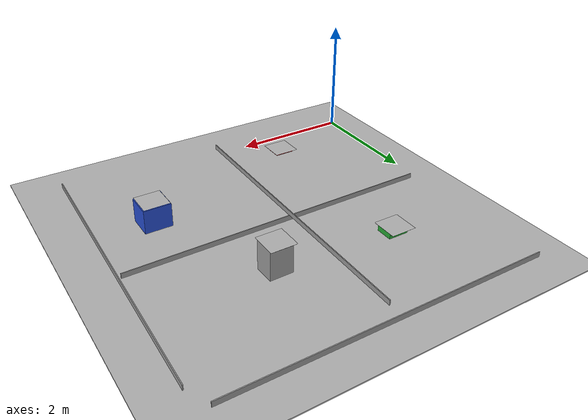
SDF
<sdf version="1.7">
 <world name="default">
  <model name="parquet_plane">
   <static>1</static>
   <link name="link">
    <collision name="collision"><geometry><box><size>200 200 0.02</size></box></geometry></collision>
    <visual name="visual">
     <cast_shadows>0</cast_shadows>
     <geometry><box><size>200 200 0.02</size></box></geometry>
     <material>
      <script>
       <uri>model://parquet_plane/materials/scripts</uri>
       <uri>model://parquet_plane/materials/textures</uri>
       <name>parquet</name>
      </script>
     </material>
    </visual>
   </link>
   <pose>0 0 -0.01 0 -0 0</pose>
  </model>
  <model name="line">
   <link name="link">
    <inertial>
     <mass>1</mass>
     <inertia>
      <ixx>0.166667</ixx>
      <ixy>0</ixy>
      <ixz>0</ixz>
      <iyy>0.166667</iyy>
      <iyz>0</iyz>
      <izz>0.166667</izz>
     </inertia>
    </inertial>
    <visual name="visual">
     <geometry><box><size>5.32063 0.014816 0.083163</size></box></geometry>
     <material>
      <script><name>Gazebo/Grey</name><uri>file://media/materials/scripts/gazebo.material</uri></script>
      <shader type="pixel"><normal_map>__default__</normal_map></shader>
      <ambient>0.3 0.3 0.3 1</ambient>
      <diffuse>0.7 0.7 0.7 1</diffuse>
      <specular>0.01 0.01 0.01 1</specular>
      <emissive>0 0 0 1</emissive>
     </material>
    </visual>
    <collision name="collision">
     <geometry><box><size>5.32063 0.014816 0.083163</size></box></geometry>
     <surface>
      <friction>
       <ode><mu>1</mu><mu2>1</mu2><fdir1>0 0 0</fdir1><slip1>0</slip1><slip2>0</slip2></ode>
       <torsional>
        <coefficient>1</coefficient>
        <patch_radius>0</patch_radius>
        <surface_radius>0</surface_radius>
        <use_patch_radius>1</use_patch_radius>
        <ode><slip>0</slip></ode>
       </torsional>
      </friction>
      <bounce><restitution_coefficient>0</restitution_coefficient><threshold>1e+06</threshold></bounce>
      <contact>
       <collide_without_contact>0</collide_without_contact>
       <collide_without_contact_bitmask>1</collide_without_contact_bitmask>
       <collide_bitmask>1</collide_bitmask>
       <ode>
        <soft_cfm>0</soft_cfm>
        <soft_erp>0.2</soft_erp>
        <kp>1e+13</kp>
        <kd>1</kd>
        <max_vel>0.01</max_vel>
        <min_depth>0</min_depth>
       </ode>
       <bullet>
        <split_impulse>1</split_impulse>
        <split_impulse_penetration_threshold>-0.01</split_impulse_penetration_threshold>
        <soft_cfm>0</soft_cfm>
        <soft_erp>0.2</soft_erp>
        <kp>1e+13</kp>
        <kd>1</kd>
       </bullet>
      </contact>
     </surface>
    </collision>
   </link>
   <static>1</static>
   <pose>2.76497 2.52743 0.040843 0.029879 -0.000464 0.00801</pose>
  </model>
  <model name="line_0">
   <link name="link">
    <inertial>
     <mass>1</mass>
     <inertia>
      <ixx>0.166667</ixx>
      <ixy>0</ixy>
      <ixz>0</ixz>
      <iyy>0.166667</iyy>
      <iyz>0</iyz>
      <izz>0.166667</izz>
     </inertia>
    </inertial>
    <visual name="visual">
     <geometry><box><size>5.32063 0.014816 0.083163</size></box></geometry>
     <material>
      <script><name>Gazebo/Grey</name><uri>file://media/materials/scripts/gazebo.material</uri></script>
      <shader type="pixel"><normal_map>__default__</normal_map></shader>
      <ambient>0.3 0.3 0.3 1</ambient>
      <diffuse>0.7 0.7 0.7 1</diffuse>
      <specular>0.01 0.01 0.01 1</specular>
      <emissive>0 0 0 1</emissive>
     </material>
    </visual>
    <collision name="collision">
     <geometry><box><size>5.32063 0.014816 0.083163</size></box></geometry>
     <surface>
      <friction>
       <ode><mu>1</mu><mu2>1</mu2><fdir1>0 0 0</fdir1><slip1>0</slip1><slip2>0</slip2></ode>
       <torsional>
        <coefficient>1</coefficient>
        <patch_radius>0</patch_radius>
        <surface_radius>0</surface_radius>
        <use_patch_radius>1</use_patch_radius>
        <ode><slip>0</slip></ode>
       </torsional>
      </friction>
      <bounce><restitution_coefficient>0</restitution_coefficient><threshold>1e+06</threshold></bounce>
      <contact>
       <collide_without_contact>0</collide_without_contact>
       <collide_without_contact_bitmask>1</collide_without_contact_bitmask>
       <collide_bitmask>1</collide_bitmask>
       <ode>
        <soft_cfm>0</soft_cfm>
        <soft_erp>0.2</soft_erp>
        <kp>1e+13</kp>
        <kd>1</kd>
        <max_vel>0.01</max_vel>
        <min_depth>0</min_depth>
       </ode>
       <bullet>
        <split_impulse>1</split_impulse>
        <split_impulse_penetration_threshold>-0.01</split_impulse_penetration_threshold>
        <soft_cfm>0</soft_cfm>
        <soft_erp>0.2</soft_erp>
        <kp>1e+13</kp>
        <kd>1</kd>
       </bullet>
      </contact>
     </surface>
    </collision>
   </link>
   <static>1</static>
   <pose>2.72032 5.27077 0.074158 0.041325 -8.6e-05 9e-06</pose>
  </model>
  <model name="line_1">
   <link name="link">
    <inertial>
     <mass>1</mass>
     <inertia>
      <ixx>0.166667</ixx>
      <ixy>0</ixy>
      <ixz>0</ixz>
      <iyy>0.166667</iyy>
      <iyz>0</iyz>
      <izz>0.166667</izz>
     </inertia>
    </inertial>
    <visual name="visual">
     <geometry><box><size>5.32063 0.014816 0.083163</size></box></geometry>
     <material>
      <script><name>Gazebo/Grey</name><uri>file://media/materials/scripts/gazebo.material</uri></script>
      <shader type="pixel"><normal_map>__default__</normal_map></shader>
      <ambient>0.3 0.3 0.3 1</ambient>
      <diffuse>0.7 0.7 0.7 1</diffuse>
      <specular>0.01 0.01 0.01 1</specular>
      <emissive>0 0 0 1</emissive>
     </material>
    </visual>
    <collision name="collision">
     <geometry><box><size>5.32063 0.014816 0.083163</size></box></geometry>
     <surface>
      <friction>
       <ode><mu>1</mu><mu2>1</mu2><fdir1>0 0 0</fdir1><slip1>0</slip1><slip2>0</slip2></ode>
       <torsional>
        <coefficient>1</coefficient>
        <patch_radius>0</patch_radius>
        <surface_radius>0</surface_radius>
        <use_patch_radius>1</use_patch_radius>
        <ode><slip>0</slip></ode>
       </torsional>
      </friction>
      <bounce><restitution_coefficient>0</restitution_coefficient><threshold>1e+06</threshold></bounce>
      <contact>
       <collide_without_contact>0</collide_without_contact>
       <collide_without_contact_bitmask>1</collide_without_contact_bitmask>
       <collide_bitmask>1</collide_bitmask>
       <ode>
        <soft_cfm>0</soft_cfm>
        <soft_erp>0.2</soft_erp>
        <kp>1e+13</kp>
        <kd>1</kd>
        <max_vel>0.01</max_vel>
        <min_depth>0</min_depth>
       </ode>
       <bullet>
        <split_impulse>1</split_impulse>
        <split_impulse_penetration_threshold>-0.01</split_impulse_penetration_threshold>
        <soft_cfm>0</soft_cfm>
        <soft_erp>0.2</soft_erp>
        <kp>1e+13</kp>
        <kd>1</kd>
       </bullet>
      </contact>
     </surface>
    </collision>
   </link>
   <static>1</static>
   <pose>2.613 2.42895 0.120512 -0.000769 0.029788 -1.60505</pose>
  </model>
  <model name="line_1_clone">
   <link name="link">
    <inertial>
     <mass>1</mass>
     <inertia>
      <ixx>0.166667</ixx>
      <ixy>0</ixy>
      <ixz>0</ixz>
      <iyy>0.166667</iyy>
      <iyz>0</iyz>
      <izz>0.166667</izz>
     </inertia>
    </inertial>
    <visual name="visual">
     <geometry><box><size>5.32063 0.014816 0.083163</size></box></geometry>
     <material>
      <script><name>Gazebo/Grey</name><uri>file://media/materials/scripts/gazebo.material</uri></script>
      <shader type="pixel"><normal_map>__default__</normal_map></shader>
      <ambient>0.3 0.3 0.3 1</ambient>
      <diffuse>0.7 0.7 0.7 1</diffuse>
      <specular>0.01 0.01 0.01 1</specular>
      <emissive>0 0 0 1</emissive>
     </material>
    </visual>
    <collision name="collision">
     <geometry><box><size>5.32063 0.014816 0.083163</size></box></geometry>
     <surface>
      <friction>
       <ode><mu>1</mu><mu2>1</mu2><fdir1>0 0 0</fdir1><slip1>0</slip1><slip2>0</slip2></ode>
       <torsional>
        <coefficient>1</coefficient>
        <patch_radius>0</patch_radius>
        <surface_radius>0</surface_radius>
        <use_patch_radius>1</use_patch_radius>
        <ode><slip>0</slip></ode>
       </torsional>
      </friction>
      <bounce><restitution_coefficient>0</restitution_coefficient><threshold>1e+06</threshold></bounce>
      <contact>
       <collide_without_contact>0</collide_without_contact>
       <collide_without_contact_bitmask>1</collide_without_contact_bitmask>
       <collide_bitmask>1</collide_bitmask>
       <ode>
        <soft_cfm>0</soft_cfm>
        <soft_erp>0.2</soft_erp>
        <kp>1e+13</kp>
        <kd>1</kd>
        <max_vel>0.01</max_vel>
        <min_depth>0</min_depth>
       </ode>
       <bullet>
        <split_impulse>1</split_impulse>
        <split_impulse_penetration_threshold>-0.01</split_impulse_penetration_threshold>
        <soft_cfm>0</soft_cfm>
        <soft_erp>0.2</soft_erp>
        <kp>1e+13</kp>
        <kd>1</kd>
       </bullet>
      </contact>
     </surface>
    </collision>
   </link>
   <static>1</static>
   <pose>5.50076 2.34134 0.120512 -0.000769 0.029788 -1.60505</pose>
  </model>
  <model name="red_box">
   <link name="link">
    <inertial>
     <mass>1</mass>
     <inertia>
      <ixx>0.166667</ixx>
      <ixy>0</ixy>
      <ixz>0</ixz>
      <iyy>0.166667</iyy>
      <iyz>0</iyz>
      <izz>0.166667</izz>
     </inertia>
    </inertial>
    <visual name="visual">
     <geometry><box><size>0.326938 0.257097 0.049671</size></box></geometry>
     <material>
      <script><name>Gazebo/Red</name><uri>file://media/materials/scripts/gazebo.material</uri></script>
      <shader type="pixel"><normal_map>__default__</normal_map></shader>
      <ambient>1 0 0 1</ambient>
      <diffuse>1 0 0 1</diffuse>
      <specular>0.1 0.1 0.1 1</specular>
      <emissive>0 0 0 1</emissive>
     </material>
    </visual>
    <collision name="collision">
     <geometry><box><size>2.36976 2.97469 0.510673</size></box></geometry>
     <surface>
      <friction>
       <ode><mu>1</mu><mu2>1</mu2><fdir1>0 0 0</fdir1><slip1>0</slip1><slip2>0</slip2></ode>
       <torsional>
        <coefficient>1</coefficient>
        <patch_radius>0</patch_radius>
        <surface_radius>0</surface_radius>
        <use_patch_radius>1</use_patch_radius>
        <ode><slip>0</slip></ode>
       </torsional>
      </friction>
      <bounce><restitution_coefficient>0</restitution_coefficient><threshold>1e+06</threshold></bounce>
      <contact>
       <collide_without_contact>0</collide_without_contact>
       <collide_without_contact_bitmask>1</collide_without_contact_bitmask>
       <collide_bitmask>1</collide_bitmask>
       <ode>
        <soft_cfm>0</soft_cfm>
        <soft_erp>0.2</soft_erp>
        <kp>1e+13</kp>
        <kd>1</kd>
        <max_vel>0.01</max_vel>
        <min_depth>0</min_depth>
       </ode>
       <bullet>
        <split_impulse>1</split_impulse>
        <split_impulse_penetration_threshold>-0.01</split_impulse_penetration_threshold>
        <soft_cfm>0</soft_cfm>
        <soft_erp>0.2</soft_erp>
        <kp>1e+13</kp>
        <kd>1</kd>
       </bullet>
      </contact>
     </surface>
    </collision>
   </link>
   <static>1</static>
   <pose>1.518 0.480526 0.024685 -1.4e-05 -1e-06 -0.000171</pose>
  </model>
  <model name="green_box">
   <link name="link">
    <inertial>
     <mass>1</mass>
     <inertia>
      <ixx>0.166667</ixx>
      <ixy>0</ixy>
      <ixz>0</ixz>
      <iyy>0.166667</iyy>
      <iyz>0</iyz>
      <izz>0.166667</izz>
     </inertia>
    </inertial>
    <visual name="visual">
     <geometry><box><size>0.34316 0.285208 0.134816</size></box></geometry>
     <material>
      <script><name>Gazebo/Green</name><uri>file://media/materials/scripts/gazebo.material</uri></script>
      <shader type="pixel"><normal_map>__default__</normal_map></shader>
      <ambient>0 1 0 1</ambient>
      <diffuse>0 1 0 1</diffuse>
      <specular>0.1 0.1 0.1 1</specular>
      <emissive>0 0 0 1</emissive>
     </material>
    </visual>
    <collision name="collision">
     <geometry><box><size>0.999999 0.999999 0.999996</size></box></geometry>
     <surface>
      <friction>
       <ode><mu>1</mu><mu2>1</mu2><fdir1>0 0 0</fdir1><slip1>0</slip1><slip2>0</slip2></ode>
       <torsional>
        <coefficient>1</coefficient>
        <patch_radius>0</patch_radius>
        <surface_radius>0</surface_radius>
        <use_patch_radius>1</use_patch_radius>
        <ode><slip>0</slip></ode>
       </torsional>
      </friction>
      <bounce><restitution_coefficient>0</restitution_coefficient><threshold>1e+06</threshold></bounce>
      <contact>
       <collide_without_contact>0</collide_without_contact>
       <collide_without_contact_bitmask>1</collide_without_contact_bitmask>
       <collide_bitmask>1</collide_bitmask>
       <ode>
        <soft_cfm>0</soft_cfm>
        <soft_erp>0.2</soft_erp>
        <kp>1e+13</kp>
        <kd>1</kd>
        <max_vel>0.01</max_vel>
        <min_depth>0</min_depth>
       </ode>
       <bullet>
        <split_impulse>1</split_impulse>
        <split_impulse_penetration_threshold>-0.01</split_impulse_penetration_threshold>
        <soft_cfm>0</soft_cfm>
        <soft_erp>0.2</soft_erp>
        <kp>1e+13</kp>
        <kd>1</kd>
       </bullet>
      </contact>
     </surface>
    </collision>
   </link>
   <static>1</static>
   <pose>1.43755 3.63106 0.048126 -0 -0.000134 7.9e-05</pose>
  </model>
  <model name="blue_box">
   <link name="link">
    <inertial>
     <mass>1</mass>
     <inertia>
      <ixx>0.166667</ixx>
      <ixy>0</ixy>
      <ixz>0</ixz>
      <iyy>0.166667</iyy>
      <iyz>0</iyz>
      <izz>0.166667</izz>
     </inertia>
    </inertial>
    <visual name="visual">
     <geometry><box><size>0.461415 0.43426 0.523057</size></box></geometry>
     <material>
      <script><name>Gazebo/Blue</name><uri>file://media/materials/scripts/gazebo.material</uri></script>
      <shader type="pixel"><normal_map>__default__</normal_map></shader>
      <ambient>0 0 1 1</ambient>
      <diffuse>0 0 1 1</diffuse>
      <specular>0.1 0.1 0.1 1</specular>
      <emissive>0 0 0 1</emissive>
     </material>
    </visual>
    <collision name="collision">
     <geometry><box><size>0.461415 0.43426 0.290587</size></box></geometry>
     <surface>
      <friction>
       <ode><mu>1</mu><mu2>1</mu2><fdir1>0 0 0</fdir1><slip1>0</slip1><slip2>0</slip2></ode>
       <torsional>
        <coefficient>1</coefficient>
        <patch_radius>0</patch_radius>
        <surface_radius>0</surface_radius>
        <use_patch_radius>1</use_patch_radius>
        <ode><slip>0</slip></ode>
       </torsional>
      </friction>
      <bounce><restitution_coefficient>0</restitution_coefficient><threshold>1e+06</threshold></bounce>
      <contact>
       <collide_without_contact>0</collide_without_contact>
       <collide_without_contact_bitmask>1</collide_without_contact_bitmask>
       <collide_bitmask>1</collide_bitmask>
       <ode>
        <soft_cfm>0</soft_cfm>
        <soft_erp>0.2</soft_erp>
        <kp>1e+13</kp>
        <kd>1</kd>
        <max_vel>0.01</max_vel>
        <min_depth>0</min_depth>
       </ode>
       <bullet>
        <split_impulse>1</split_impulse>
        <split_impulse_penetration_threshold>-0.01</split_impulse_penetration_threshold>
        <soft_cfm>0</soft_cfm>
        <soft_erp>0.2</soft_erp>
        <kp>1e+13</kp>
        <kd>1</kd>
       </bullet>
      </contact>
     </surface>
    </collision>
   </link>
   <static>1</static>
   <pose>4.49572 1.5015 0.145307 -6.2e-05 0 -9e-05</pose>
  </model>
  <model name="unit_box">
   <pose>3.4849 3.51843 0.252232 0 1e-06 0.017652</pose>
   <link name="link">
    <inertial>
     <mass>1</mass>
     <inertia>
      <ixx>0.166667</ixx>
      <ixy>0</ixy>
      <ixz>0</ixz>
      <iyy>0.166667</iyy>
      <iyz>0</iyz>
      <izz>0.166667</izz>
     </inertia>
    </inertial>
    <collision name="collision">
     <geometry><box><size>0.388379 0.344852 0.504464</size></box></geometry>
    </collision>
    <visual name="visual">
     <geometry><box><size>0.388379 0.344852 0.504464</size></box></geometry>
     <material>
      <script><name>Gazebo/Grey</name><uri>file://media/materials/scripts/gazebo.material</uri></script>
     </material>
    </visual>
    <static>1</static>
   </link>
  </model>
  <model name="aruco_cherries">
   <static>1</static>
   <link name="marker_101_link">
    <pose>0 0 0.001 0 -0 1.5708</pose>
    <visual name="visual_marker_cherries">
     <cast_shadows>0</cast_shadows>
     <geometry><box><size>0.44 0.44 0.001</size></box></geometry>
     <material>
      <script>
       <uri>model://aruco_cherries/materials/scripts</uri>
       <uri>model://aruco_cherries/materials/textures</uri>
       <name>aruco/marker_cherries</name>
      </script>
     </material>
    </visual>
   </link>
   <pose>1.51232 0.458755 0.0554 0 -0 0</pose>
  </model>
  <model name="aruco_apples">
   <static>1</static>
   <link name="marker_apples">
    <pose>0 0 0.001 0 -0 1.5708</pose>
    <visual name="visual_apples">
     <cast_shadows>0</cast_shadows>
     <geometry><box><size>0.44 0.44 0.001</size></box></geometry>
     <material>
      <script>
       <uri>model://aruco_apples/materials/scripts</uri>
       <uri>model://aruco_apples/materials/textures</uri>
       <name>aruco/marker_apples</name>
      </script>
     </material>
    </visual>
   </link>
   <pose>1.4238 3.65951 0.124868 0 -0 0</pose>
  </model>
  <model name="aruco_potatoes">
   <static>1</static>
   <link name="marker_101_link">
    <pose>0 0 0.001 0 -0 1.5708</pose>
    <visual name="visual_marker_potatoes">
     <cast_shadows>0</cast_shadows>
     <geometry><box><size>0.44 0.44 0.001</size></box></geometry>
     <material>
      <script>
       <uri>model://aruco_potatoes/materials/scripts</uri>
       <uri>model://aruco_potatoes/materials/textures</uri>
       <name>aruco/marker_potatoes</name>
      </script>
     </material>
    </visual>
   </link>
   <pose>3.46859 3.51623 0.506838 0 -0 0</pose>
  </model>
  <model name="aruco_water">
   <static>1</static>
   <link name="marker_water">
    <pose>0 0 0.001 0 -0 1.5708</pose>
    <visual name="visual_water">
     <cast_shadows>0</cast_shadows>
     <geometry><box><size>0.44 0.44 0.001</size></box></geometry>
     <material>
      <script>
       <uri>model://aruco_water/materials/scripts</uri>
       <uri>model://aruco_water/materials/textures</uri>
       <name>aruco/marker_water</name>
      </script>
     </material>
    </visual>
   </link>
   <pose>4.49318 1.49358 0.41497 0 -0 0</pose>
  </model>
 </world>
</sdf>
